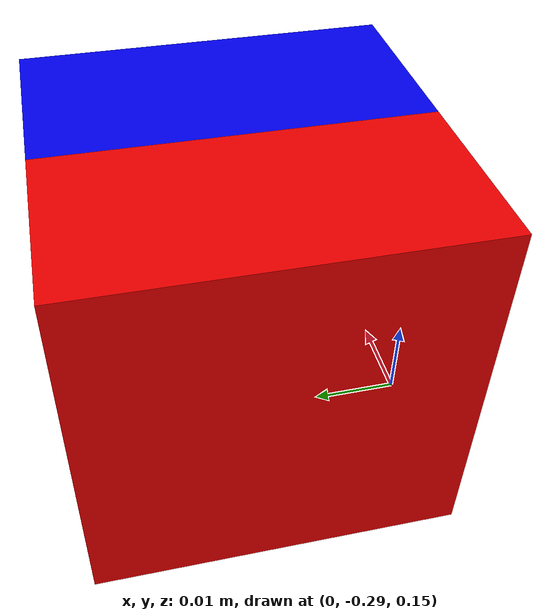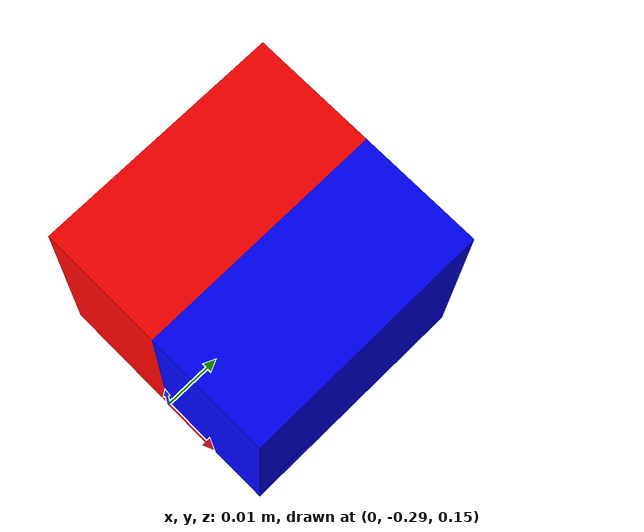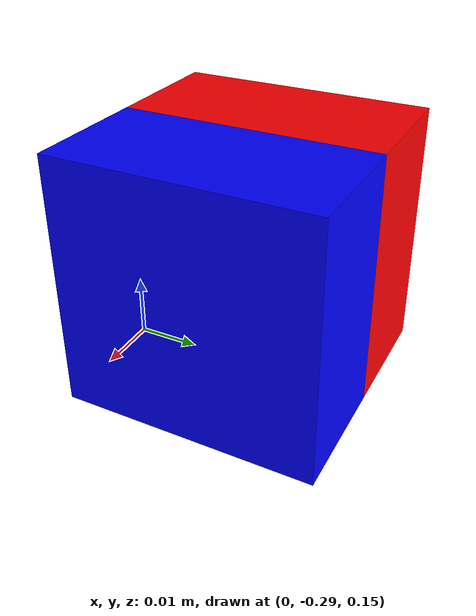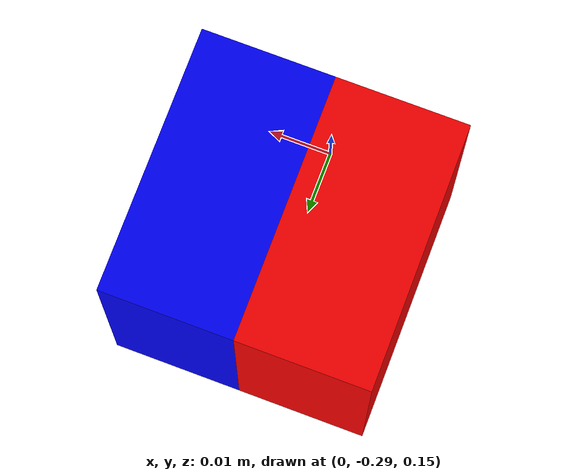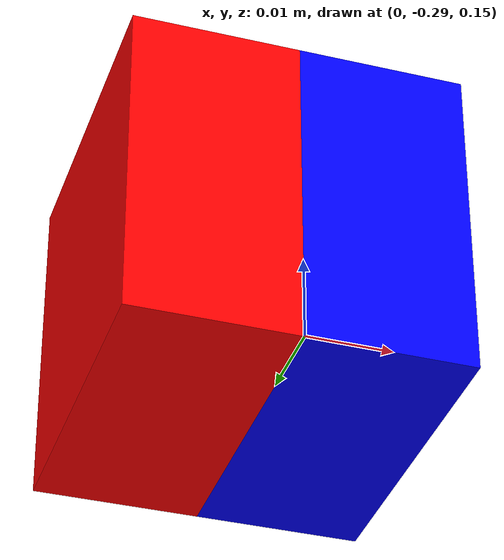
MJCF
<mujoco>
    <worldbody>
        <!-- 第一个方块 -->
        <body name="box1" pos="-0.01 -0.27 0.17">
            <geom type="box" size="0.01 0.02 0.02" rgba="1 0 0 1"/>
            <inertial pos="0 0 0" mass="0.05" diaginertia="0.0003125 0.0003125 0.0003125"/>
            <!-- 第二个方块 -->
            <body name="box2" pos="0.02 0.0 0">
                <joint name="rotate_joint" type="hinge" axis="1 0 0" pos="0.01 0 0" damping="0.0"/>
                <geom type="box" size="0.01 0.02 0.02" rgba="0 0 1 1"/>
                <inertial pos="0 0 0" mass="0.05" diaginertia="0.0003125 0.0003125 0.0003125"/>
            </body>
        </body>
    </worldbody>

    <contact>
        <exclude body1="box1" body2="box2"/>
    </contact>

</mujoco>
